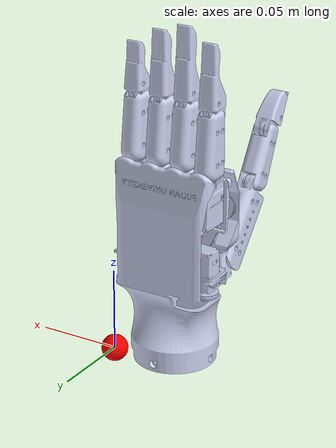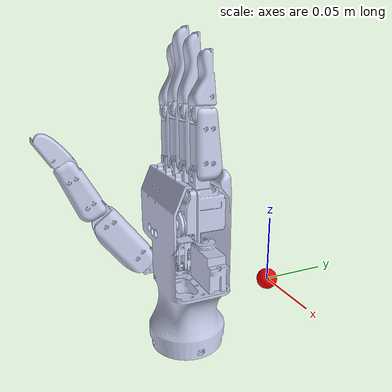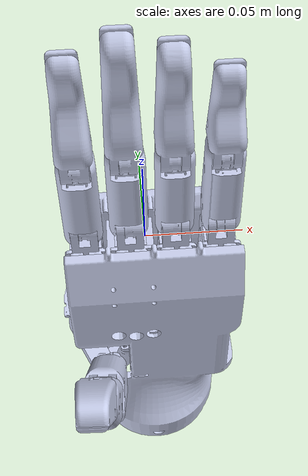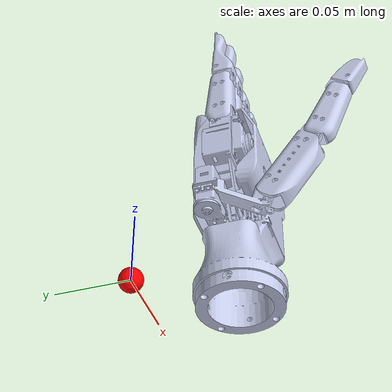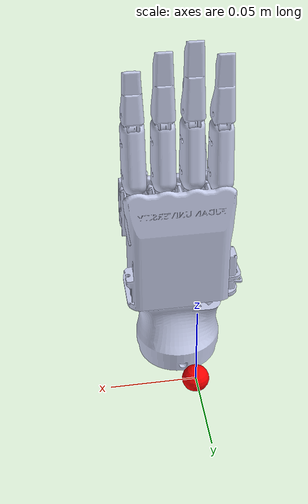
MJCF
<mujoco model="folding">
    <compiler angle="radian" meshdir="meshes" autolimits="true"/>

    <default>
        <default class="joint_default">
            <joint damping="1" limited="true" armature="0.0002" frictionloss="0.01"/>
            <geom solimp="0.9 0.95 0.001" solref="0.01 0.1"/>
        </default>

        <default class="th_base">
            <joint range="0 1"/>
            <position ctrlrange="0 1" forcerange="-5 5"/>
        </default>
        <default class="th">
            <joint range="0 1"/>
            <position ctrlrange="0 1" forcerange="-5 5"/>
        </default>
        <default class="ff_base">
            <joint range="0 1"/>
            <position ctrlrange="0 1" forcerange="-5 5"/>
        </default>
        <default class="ff">
            <joint range="0 3.1415926"/>
            <position ctrlrange="0 3.1415926" forcerange="-5 5"/>
        </default>
        <default class="mf">
            <joint range="0 3.1415926"/>
            <position ctrlrange="0 3.1415926" forcerange="-5 5"/>
        </default>
        <default class="rf_base">
            <joint range="0 1"/>
            <position ctrlrange="0 1" forcerange="-5 5"/>
        </default>
        <default class="rf">
            <joint range="0 3.1415926"/>
            <position ctrlrange="0 3.1415926" forcerange="-5 5"/>
        </default>
        <default class="lf_base">
            <joint range="0 1"/>
            <position ctrlrange="0 1" forcerange="-5 5"/>
        </default>
        <default class="lf">
            <joint range="0 3.1415926"/>
            <position ctrlrange="0 3.1415926" forcerange="-5 5"/>
        </default>
    </default>

    <asset>
        <mesh name="base_link" file="base_link.STL"/>
        <mesh name="th_base" file="th_base.STL"/>
        <mesh name="th_proximal" file="th_proximal.STL"/>
        <mesh name="th_middle" file="th_middle.STL"/>
        <mesh name="th_distal" file="th_distal.STL"/>
        <mesh name="ff_base" file="ff_base.STL"/>
        <mesh name="ff_proximal" file="ff_proximal.STL"/>
        <mesh name="ff_distal" file="ff_distal.STL"/>
        <mesh name="mf_base" file="mf_base.STL"/>
        <mesh name="mf_proximal" file="mf_proximal.STL"/>
        <mesh name="mf_distal" file="mf_distal.STL"/>
        <mesh name="rf_base" file="rf_base.STL"/>
        <mesh name="rf_proximal" file="rf_proximal.STL"/>
        <mesh name="rf_distal" file="rf_distal.STL"/>
        <mesh name="lf_base" file="lf_base.STL"/>
        <mesh name="lf_proximal" file="lf_proximal.STL"/>
        <mesh name="lf_distal" file="lf_distal.STL"/>
    </asset>

    <worldbody>
        <body name="base_link" pos="0 0 0">
            <geom type="mesh" rgba="0.79216 0.81961 0.93333 1" mesh="base_link"/>
            <site name="base_link_origin" pos="0 0 0" size="0.008" rgba="1 0 0 1"/>
            <body name="th_base" pos="-0.0080512 -0.067822 0.020582" quat="0.707105 0.707108 0 0">
                <inertial pos="-0.014284 0.010211 -0.0041" quat="0.586646 0.386826 0.138378 0.697899" mass="0.0085863"
                          diaginertia="6.55258e-07 4.40944e-07 4.28258e-07"/>
                <joint name="th_base" pos="0 0 0" axis="0 0 1" range="0 1.5708" class="joint_default"/>
                <geom type="mesh" rgba="0.79216 0.81961 0.93333 1" mesh="th_base"/>
                <body name="th_proximal" pos="-0.013472 0.0081269 0.021762" quat="0.719751 0.023503 0.693465 0.0226445">
                    <inertial pos="-0.018515 0.017432 0.001018" quat="0.352751 0.611373 -0.355254 0.612849"
                              mass="0.0078933"
                              diaginertia="1.7828e-06 1.70832e-06 4.66333e-07"/>
                    <joint name="th_pip" pos="0 0 0" axis="0 0 -1" range="0 1.22173" class="joint_default"/>
                    <geom type="mesh" rgba="0.79216 0.81961 0.93333 1" mesh="th_proximal"/>
                    <body name="th_middle" pos="-0.030114 0.041209 0">
                        <inertial pos="-0.010678 0.012634 0.00099999" quat="0.69727 0.697265 0.117551 0.117552"
                                  mass="0.004061" diaginertia="4.93938e-07 4.9383e-07 1.72722e-07"/>
                        <joint name="th_mip" pos="0 0 0" axis="0 0 -1" range="0 3.1415926" class="joint_default"/>
                        <geom type="mesh" rgba="0.79216 0.81961 0.93333 1" mesh="th_middle"/>
                        <body name="th_distal" pos="-0.01502 0.031613 0">
                            <inertial pos="-0.00785224 0.00960272 0.000809226" quat="0.28747 0.646044 -0.28748 0.646021"
                                      mass="0.00281885" diaginertia="1.90128e-07 1.8927e-07 6.62716e-08"/>
                            <joint name="th_dip" pos="0 0 0" axis="0 0 -1" range="0 3.1415926" class="joint_default"/>
                            <geom type="mesh" rgba="0.792157 0.819608 0.933333 1" mesh="th_distal"/>
                        </body>
                    </body>
                </body>
            </body>
            <body name="ff_base" pos="-0.0080512 -0.072222 0.020582" quat="0.707105 0.707108 0 0">
                <inertial pos="-0.015872 0.051523 -0.0025977" quat="0.423803 0.576776 -0.432904 0.54801"
                          mass="0.0079924"
                          diaginertia="7.01144e-07 6.54809e-07 2.02217e-07"/>
                <joint name="ff_base" pos="0 0 0" axis="0 0 1" range="0 1.5708" class="joint_default"/>
                <geom type="mesh" rgba="0.79216 0.81961 0.93333 1" mesh="ff_base"/>
                <body name="ff_proximal" pos="-0.0184 0.07655 -0.0025"
                      quat="-0.707105 -2.59734e-06 0.707108 -2.59735e-06">
                    <inertial pos="-0.0042227 0.012982 -0.0012" quat="0.70605 0.706044 -0.0387019 -0.0387022"
                              mass="0.004061" diaginertia="4.93938e-07 4.9383e-07 1.72722e-07"/>
                    <joint name="ff_pip" pos="0 0 0" axis="0 0 -1" range="0 3.1415926" class="joint_default"/>
                    <geom type="mesh" rgba="0.79216 0.81961 0.93333 1" mesh="ff_proximal"/>
                    <body name="ff_distal" pos="0 0.031987 0">
                        <inertial pos="-0.0022373 0.017837 -0.0010006" quat="0.7056 0.705687 0.0452708 0.0456548"
                                  mass="0.0040496" diaginertia="6.32385e-07 6.2664e-07 8.18567e-08"/>
                        <joint name="ff_dip" pos="0 0 0" axis="0 0 -1" range="0 3.1415926" class="joint_default"/>
                        <geom type="mesh" rgba="0.79216 0.81961 0.93333 1" mesh="ff_distal"/>
                    </body>
                </body>
            </body>
            <body name="mf_base" pos="-0.0080512 -0.076622 0.020582" quat="0.707105 0.707108 0 0">
                <geom type="mesh" rgba="0.792157 0.819608 0.933333 1" mesh="mf_base"/>
            </body>
            <body name="mf_proximal" pos="-0.0093512 -0.0697223 0.097132" quat="-0.500002 -0.5 0.499996 0.500002">
                <inertial pos="-0.0042227 0.015994 -0.0011" quat="0.70605 0.706044 -0.0387019 -0.0387022"
                          mass="0.004061"
                          diaginertia="4.93938e-07 4.9383e-07 1.72722e-07"/>
                <joint name="mf_pip" pos="0 0 0" axis="0 0 -1" range="0 3.1415926" class="joint_default"/>
                <geom type="mesh" rgba="0.79216 0.81961 0.93333 1" mesh="mf_proximal"/>
                <body name="mf_distal" pos="0 0.035 0">
                    <inertial pos="-0.00217716 0.0216169 -0.000905776" quat="0.706583 0.706642 0.025943 0.0269177"
                              mass="0.00502243" diaginertia="9.65115e-07 9.59144e-07 1.01844e-07"/>
                    <joint name="mf_dip" pos="0 0 0" axis="0 0 -1" range="0 3.1415926" class="joint_default"/>
                    <geom type="mesh" rgba="0.792157 0.819608 0.933333 1" mesh="mf_distal"/>
                </body>
            </body>
            <body name="rf_base" pos="-0.0080512 -0.081022 0.020582" quat="0.707105 0.707108 0 0">
                <inertial pos="0.0160603 0.051546 -0.0105687" quat="0.614177 0.43886 -0.506735 0.416423"
                          mass="0.00800098"
                          diaginertia="7.01283e-07 6.6025e-07 2.05312e-07"/>
                <joint name="rf_base" pos="0 0 0" axis="0 0 -1" range="0 1.5708" class="joint_default"/>
                <geom type="mesh" rgba="0.792157 0.819608 0.933333 1" mesh="rf_base"/>
                <body name="rf_proximal" pos="0.0159 0.07655 -0.0113"
                      quat="-0.707105 -2.59734e-06 0.707108 -2.59735e-06">
                    <inertial pos="-0.00422267 0.0159942 -0.000900013" quat="0.70605 0.706044 -0.0387012 -0.0387015"
                              mass="0.00406101" diaginertia="4.93941e-07 4.93832e-07 1.72719e-07"/>
                    <joint name="rf_pip" pos="0 0 0" axis="0 0 -1" range="0 3.1415926" class="joint_default"/>
                    <geom type="mesh" rgba="0.792157 0.819608 0.933333 1" mesh="rf_proximal"/>
                    <body name="rf_distal" pos="0 0.035 0">
                        <inertial pos="-0.002272 0.018499 -0.00069525" quat="0.706592 0.70669 0.0245427 0.0267511"
                                  mass="0.0049934" diaginertia="7.54587e-07 7.5205e-07 1.00553e-07"/>
                        <joint name="rf_dip" pos="0 0 0" axis="0 0 -1" range="0 3.1415926" class="joint_default"/>
                        <geom type="mesh" rgba="0.79216 0.81961 0.93333 1" mesh="rf_distal"/>
                    </body>
                </body>
            </body>
            <body name="lf_base" pos="-0.0080512 -0.085422 0.020582" quat="0.707105 0.707108 0 0">
                <inertial pos="0 0 0" quat="0.5 0.5 0.5 0.5" mass="0.004061" diaginertia="8.44e-07 8.44e-07 1.35e-07"/>
                <joint name="lf_base" pos="0 0 0" axis="0 0 -1" range="0 1.5708" class="joint_default"/>
                <geom type="mesh" rgba="0.792157 0.819608 0.933333 1" mesh="lf_base"/>
                <body name="lf_proximal" pos="0.0332 0.07655 -0.0157"
                      quat="-0.707105 -2.59734e-06 0.707108 -2.59735e-06">
                    <inertial pos="-0.0042227 0.015994 -0.0010524" quat="0.70605 0.706044 -0.0387019 -0.0387022"
                              mass="0.004061" diaginertia="4.93938e-07 4.9383e-07 1.72722e-07"/>
                    <joint name="lf_pip" pos="0 0 0" axis="0 0 -1" range="0 3.1415926" class="joint_default"/>
                    <geom type="mesh" rgba="0.79216 0.81961 0.93333 1" mesh="lf_proximal"/>
                    <body name="lf_distal" pos="0 0.035 0">
                        <inertial pos="-0.0021067 0.014352 -0.0010016" quat="0.70494 0.704914 0.05435 0.0565776"
                                  mass="0.0032335" diaginertia="3.28397e-07 3.2262e-07 6.44185e-08"/>
                        <joint name="lf_dip" pos="0 0 0" axis="0 0 -1" range="0 3.1415926" class="joint_default"/>
                        <geom type="mesh" rgba="0.79216 0.81961 0.93333 1" mesh="lf_distal"/>
                    </body>
                </body>
            </body>
        </body>
    </worldbody>

    <contact>
        <exclude body1="base_link" body2="th_base"/>
        <exclude body1="base_link" body2="ff_base"/>
        <exclude body1="base_link" body2="mf_base"/>
        <exclude body1="base_link" body2="rf_base"/>
        <exclude body1="base_link" body2="lf_base"/>

        <exclude body1="base_link" body2="th_proximal"/>
        <exclude body1="base_link" body2="ff_proximal"/>
        <exclude body1="base_link" body2="mf_proximal"/>
        <exclude body1="base_link" body2="rf_proximal"/>
        <exclude body1="base_link" body2="lf_proximal"/>

        <exclude body1="th_base" body2="ff_base"/>
        <exclude body1="th_base" body2="mf_base"/>
        <exclude body1="th_base" body2="rf_base"/>
        <exclude body1="th_base" body2="lf_base"/>
        <exclude body1="ff_base" body2="mf_base"/>
        <exclude body1="ff_base" body2="rf_base"/>
        <exclude body1="ff_base" body2="lf_base"/>
        <exclude body1="mf_base" body2="rf_base"/>
        <exclude body1="mf_base" body2="lf_base"/>
        <exclude body1="rf_base" body2="lf_base"/>

        <exclude body1="th_base" body2="th_proximal"/>
        <exclude body1="ff_base" body2="ff_proximal"/>
        <exclude body1="mf_base" body2="mf_proximal"/>
        <exclude body1="rf_base" body2="rf_proximal"/>
        <exclude body1="lf_base" body2="lf_proximal"/>
    </contact>

    <tendon>
        <fixed name="th">
            <joint joint="th_pip" coef="0.5"/>
            <joint joint="th_mip" coef="0.8"/>
            <joint joint="th_dip" coef="0.8"/>
        </fixed>
        <fixed name="ff">
            <joint joint="ff_pip" coef="1"/>
            <joint joint="ff_dip" coef="1"/>
        </fixed>
        <fixed name="mf">
            <joint joint="mf_pip" coef="1"/>
            <joint joint="mf_dip" coef="1"/>
        </fixed>
        <fixed name="rf">
            <joint joint="rf_pip" coef="1"/>
            <joint joint="rf_dip" coef="1"/>
        </fixed>
        <fixed name="lf">
            <joint joint="lf_pip" coef="1"/>
            <joint joint="lf_dip" coef="1"/>
        </fixed>
    </tendon>

    <actuator>
        <position name="th_base" joint="th_base" kp="400" class="th_base"/>
        <position name="th" tendon="th" kp="400" class="th"/>

        <position name="ff_base" joint="ff_base" kp="400" class="ff_base"/>
        <position name="ff" tendon="ff" kp="400" class="ff"/>

        <position name="mf" tendon="mf" kp="400" class="mf"/>

        <position name="rf_base" joint="rf_base" kp="400" class="rf_base"/>
        <position name="rf" tendon="rf" kp="400" class="rf"/>

        <position name="lf_base" joint="lf_base" kp="400" class="lf_base"/>
        <position name="lf" tendon="lf" kp="400" class="lf"/>
    </actuator>

</mujoco>
